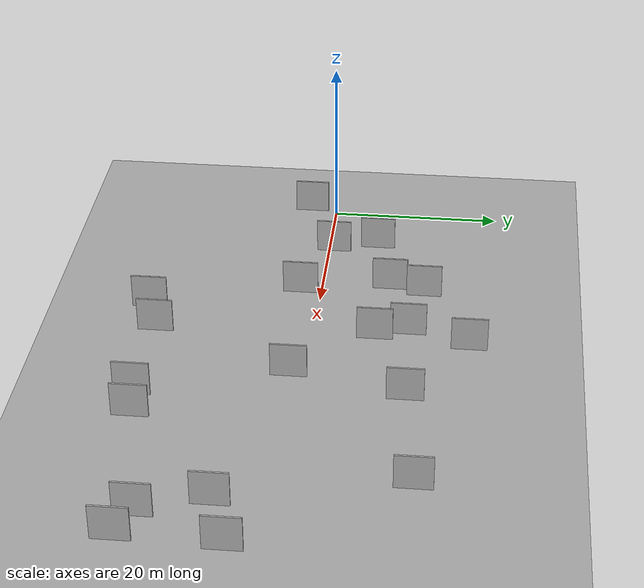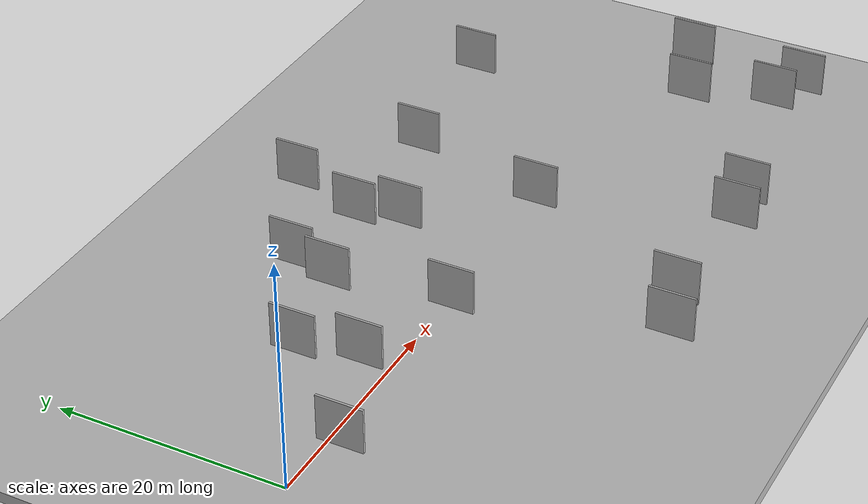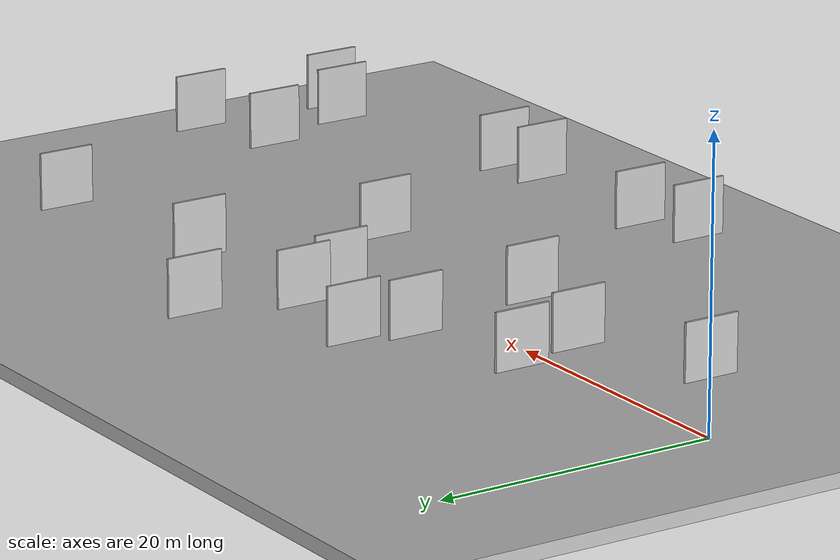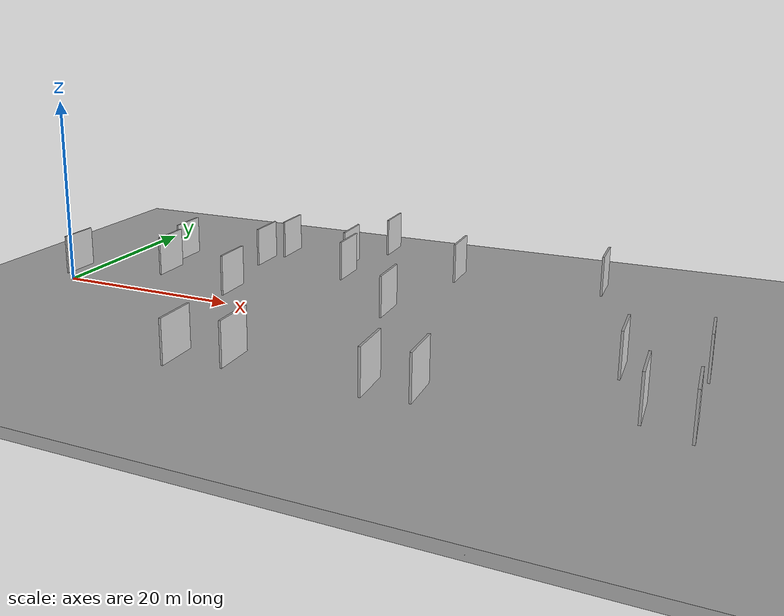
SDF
<?xml version="1.0" encoding="utf-8"?>

<sdf version="1.6">

   <world name="default">

      <gui fullscreen="0">

         <camera name="user_camera">

            <pose>-15 0 4.57585 0 0 0</pose>

            <view_controller>orbit</view_controller>

         </camera>

      </gui>

      <scene>

         <sky>

           <clouds>

             <speed>12</speed>

           </clouds>

         </sky>

         <ambient>0.4 0.4 0.4 1</ambient>

         <background>0.7 0.7 0.7 1</background>

         <shadows>1</shadows>

      </scene>

      <gravity>0 0 -9.8066</gravity>

      <magnetic_field>6e-06 2.3e-05 -4.2e-05</magnetic_field>

      <physics default="0" name="default_physics" type="ode">

         <ode>

            <solver>

               <type>quick</type>

               <iters>10</iters>

               <sor>1.0</sor>

               <use_dynamic_moi_rescaling>0</use_dynamic_moi_rescaling>

            </solver>

            <constraints>

               <cfm>0</cfm>

               <erp>0.2</erp>

               <contact_max_correcting_vel>100</contact_max_correcting_vel>

               <contact_surface_layer>0.001</contact_surface_layer>

            </constraints>

         </ode>

         <max_step_size>0.004</max_step_size>

         <real_time_factor>1</real_time_factor>

         <real_time_update_rate>250</real_time_update_rate>

      </physics>

      <light name="sun" type="directional">

         <cast_shadows>1</cast_shadows>

         <pose>0 0 10 0 0 0</pose>

         <diffuse>0.8 0.8 0.8 1</diffuse>

         <specular>0.2 0.2 0.2 1</specular>

         <attenuation>

            <range>1000</range>

            <constant>0.9</constant>

            <linear>0.01</linear>

            <quadratic>0.001</quadratic>

         </attenuation>

         <direction>-0.5 0.1 -0.9</direction>

      </light>

      <include>

         <name>ground_plane_1</name>

         <uri>model://HANNAS_ground_plane</uri>

         <pose>0 0 0  0 0 0</pose>

      </include>

      <include>

         <name>ground_plane_2</name>

         <uri>model://HANNAS_ground_plane</uri>

         <pose>100 0 0  0 0 0</pose>

      </include>

      <model name="HANNAS_wall_1">

         <static>1</static>

         <pose frame="">66.6942 -4.2332 2.5 0.000000 0.000000 1.570796</pose>

         <link name="link">

            <pose frame="">0 0 2.00 0 0 0</pose>

            <collision name="collision">

               <geometry>

                  <box>

                     <size>4.00 0.2 4.00</size>

                  </box>

               </geometry>

               <max_contacts>10</max_contacts>

               <surface>

                  <contact>

                     <ode/>

                  </contact>

                  <bounce/>

                  <friction>

                     <torsional>

                        <ode/>

                     </torsional>

                     <ode/>

                  </friction>

               </surface>

            </collision>

            <visual name="visual">

               <cast_shadows>0</cast_shadows>

               <geometry>

                  <box>

                     <size>4.00 0.2 4.00</size>

                  </box>

               </geometry>

               <material>

                  <script>

                     <uri>model://HANNAS_wall/materials/scripts</uri>

                     <uri>model://HANNAS_wall/materials/textures</uri>

                     <name>vrc/HANNAS_wall</name>

                  </script>

               </material>

            </visual>

            <self_collide>0</self_collide>

            <enable_wind>0</enable_wind>

            <kinematic>0</kinematic>

         </link>

      </model>

      <model name="HANNAS_wall_2">

         <static>1</static>

         <pose frame="">11.5456 6.1222 2.5 0.000000 0.000000 1.570796</pose>

         <link name="link">

            <pose frame="">0 0 2.00 0 0 0</pose>

            <collision name="collision">

               <geometry>

                  <box>

                     <size>4.00 0.2 4.00</size>

                  </box>

               </geometry>

               <max_contacts>10</max_contacts>

               <surface>

                  <contact>

                     <ode/>

                  </contact>

                  <bounce/>

                  <friction>

                     <torsional>

                        <ode/>

                     </torsional>

                     <ode/>

                  </friction>

               </surface>

            </collision>

            <visual name="visual">

               <cast_shadows>0</cast_shadows>

               <geometry>

                  <box>

                     <size>4.00 0.2 4.00</size>

                  </box>

               </geometry>

               <material>

                  <script>

                     <uri>model://HANNAS_wall/materials/scripts</uri>

                     <uri>model://HANNAS_wall/materials/textures</uri>

                     <name>vrc/HANNAS_wall</name>

                  </script>

               </material>

            </visual>

            <self_collide>0</self_collide>

            <enable_wind>0</enable_wind>

            <kinematic>0</kinematic>

         </link>

      </model>

      <model name="HANNAS_wall_3">

         <static>1</static>

         <pose frame="">62.7102 -13.5554 2.5 0.000000 0.000000 1.570796</pose>

         <link name="link">

            <pose frame="">0 0 2.00 0 0 0</pose>

            <collision name="collision">

               <geometry>

                  <box>

                     <size>4.00 0.2 4.00</size>

                  </box>

               </geometry>

               <max_contacts>10</max_contacts>

               <surface>

                  <contact>

                     <ode/>

                  </contact>

                  <bounce/>

                  <friction>

                     <torsional>

                        <ode/>

                     </torsional>

                     <ode/>

                  </friction>

               </surface>

            </collision>

            <visual name="visual">

               <cast_shadows>0</cast_shadows>

               <geometry>

                  <box>

                     <size>4.00 0.2 4.00</size>

                  </box>

               </geometry>

               <material>

                  <script>

                     <uri>model://HANNAS_wall/materials/scripts</uri>

                     <uri>model://HANNAS_wall/materials/textures</uri>

                     <name>vrc/HANNAS_wall</name>

                  </script>

               </material>

            </visual>

            <self_collide>0</self_collide>

            <enable_wind>0</enable_wind>

            <kinematic>0</kinematic>

         </link>

      </model>

      <model name="HANNAS_wall_4">

         <static>1</static>

         <pose frame="">38.6337 -1.4164 2.5 0.000000 0.000000 1.570796</pose>

         <link name="link">

            <pose frame="">0 0 2.00 0 0 0</pose>

            <collision name="collision">

               <geometry>

                  <box>

                     <size>4.00 0.2 4.00</size>

                  </box>

               </geometry>

               <max_contacts>10</max_contacts>

               <surface>

                  <contact>

                     <ode/>

                  </contact>

                  <bounce/>

                  <friction>

                     <torsional>

                        <ode/>

                     </torsional>

                     <ode/>

                  </friction>

               </surface>

            </collision>

            <visual name="visual">

               <cast_shadows>0</cast_shadows>

               <geometry>

                  <box>

                     <size>4.00 0.2 4.00</size>

                  </box>

               </geometry>

               <material>

                  <script>

                     <uri>model://HANNAS_wall/materials/scripts</uri>

                     <uri>model://HANNAS_wall/materials/textures</uri>

                     <name>vrc/HANNAS_wall</name>

                  </script>

               </material>

            </visual>

            <self_collide>0</self_collide>

            <enable_wind>0</enable_wind>

            <kinematic>0</kinematic>

         </link>

      </model>

      <model name="HANNAS_wall_5">

         <static>1</static>

         <pose frame="">21.5916 12.1789 2.5 0.000000 0.000000 1.570796</pose>

         <link name="link">

            <pose frame="">0 0 2.00 0 0 0</pose>

            <collision name="collision">

               <geometry>

                  <box>

                     <size>4.00 0.2 4.00</size>

                  </box>

               </geometry>

               <max_contacts>10</max_contacts>

               <surface>

                  <contact>

                     <ode/>

                  </contact>

                  <bounce/>

                  <friction>

                     <torsional>

                        <ode/>

                     </torsional>

                     <ode/>

                  </friction>

               </surface>

            </collision>

            <visual name="visual">

               <cast_shadows>0</cast_shadows>

               <geometry>

                  <box>

                     <size>4.00 0.2 4.00</size>

                  </box>

               </geometry>

               <material>

                  <script>

                     <uri>model://HANNAS_wall/materials/scripts</uri>

                     <uri>model://HANNAS_wall/materials/textures</uri>

                     <name>vrc/HANNAS_wall</name>

                  </script>

               </material>

            </visual>

            <self_collide>0</self_collide>

            <enable_wind>0</enable_wind>

            <kinematic>0</kinematic>

         </link>

      </model>

      <model name="HANNAS_wall_6">

         <static>1</static>

         <pose frame="">31.4083 -17.2123 2.5 0.000000 0.000000 1.570796</pose>

         <link name="link">

            <pose frame="">0 0 2.00 0 0 0</pose>

            <collision name="collision">

               <geometry>

                  <box>

                     <size>4.00 0.2 4.00</size>

                  </box>

               </geometry>

               <max_contacts>10</max_contacts>

               <surface>

                  <contact>

                     <ode/>

                  </contact>

                  <bounce/>

                  <friction>

                     <torsional>

                        <ode/>

                     </torsional>

                     <ode/>

                  </friction>

               </surface>

            </collision>

            <visual name="visual">

               <cast_shadows>0</cast_shadows>

               <geometry>

                  <box>

                     <size>4.00 0.2 4.00</size>

                  </box>

               </geometry>

               <material>

                  <script>

                     <uri>model://HANNAS_wall/materials/scripts</uri>

                     <uri>model://HANNAS_wall/materials/textures</uri>

                     <name>vrc/HANNAS_wall</name>

                  </script>

               </material>

            </visual>

            <self_collide>0</self_collide>

            <enable_wind>0</enable_wind>

            <kinematic>0</kinematic>

         </link>

      </model>

      <model name="HANNAS_wall_7">

         <static>1</static>

         <pose frame="">12.7582 0.9636 2.5 0.000000 0.000000 1.570796</pose>

         <link name="link">

            <pose frame="">0 0 2.00 0 0 0</pose>

            <collision name="collision">

               <geometry>

                  <box>

                     <size>4.00 0.2 4.00</size>

                  </box>

               </geometry>

               <max_contacts>10</max_contacts>

               <surface>

                  <contact>

                     <ode/>

                  </contact>

                  <bounce/>

                  <friction>

                     <torsional>

                        <ode/>

                     </torsional>

                     <ode/>

                  </friction>

               </surface>

            </collision>

            <visual name="visual">

               <cast_shadows>0</cast_shadows>

               <geometry>

                  <box>

                     <size>4.00 0.2 4.00</size>

                  </box>

               </geometry>

               <material>

                  <script>

                     <uri>model://HANNAS_wall/materials/scripts</uri>

                     <uri>model://HANNAS_wall/materials/textures</uri>

                     <name>vrc/HANNAS_wall</name>

                  </script>

               </material>

            </visual>

            <self_collide>0</self_collide>

            <enable_wind>0</enable_wind>

            <kinematic>0</kinematic>

         </link>

      </model>

      <model name="HANNAS_wall_8">

         <static>1</static>

         <pose frame="">22.1565 -1.9897 2.5 0.000000 0.000000 1.570796</pose>

         <link name="link">

            <pose frame="">0 0 2.00 0 0 0</pose>

            <collision name="collision">

               <geometry>

                  <box>

                     <size>4.00 0.2 4.00</size>

                  </box>

               </geometry>

               <max_contacts>10</max_contacts>

               <surface>

                  <contact>

                     <ode/>

                  </contact>

                  <bounce/>

                  <friction>

                     <torsional>

                        <ode/>

                     </torsional>

                     <ode/>

                  </friction>

               </surface>

            </collision>

            <visual name="visual">

               <cast_shadows>0</cast_shadows>

               <geometry>

                  <box>

                     <size>4.00 0.2 4.00</size>

                  </box>

               </geometry>

               <material>

                  <script>

                     <uri>model://HANNAS_wall/materials/scripts</uri>

                     <uri>model://HANNAS_wall/materials/textures</uri>

                     <name>vrc/HANNAS_wall</name>

                  </script>

               </material>

            </visual>

            <self_collide>0</self_collide>

            <enable_wind>0</enable_wind>

            <kinematic>0</kinematic>

         </link>

      </model>

      <model name="HANNAS_wall_9">

         <static>1</static>

         <pose frame="">56.1053 13.0224 2.5 0.000000 0.000000 1.570796</pose>

         <link name="link">

            <pose frame="">0 0 2.00 0 0 0</pose>

            <collision name="collision">

               <geometry>

                  <box>

                     <size>4.00 0.2 4.00</size>

                  </box>

               </geometry>

               <max_contacts>10</max_contacts>

               <surface>

                  <contact>

                     <ode/>

                  </contact>

                  <bounce/>

                  <friction>

                     <torsional>

                        <ode/>

                     </torsional>

                     <ode/>

                  </friction>

               </surface>

            </collision>

            <visual name="visual">

               <cast_shadows>0</cast_shadows>

               <geometry>

                  <box>

                     <size>4.00 0.2 4.00</size>

                  </box>

               </geometry>

               <material>

                  <script>

                     <uri>model://HANNAS_wall/materials/scripts</uri>

                     <uri>model://HANNAS_wall/materials/textures</uri>

                     <name>vrc/HANNAS_wall</name>

                  </script>

               </material>

            </visual>

            <self_collide>0</self_collide>

            <enable_wind>0</enable_wind>

            <kinematic>0</kinematic>

         </link>

      </model>

      <model name="HANNAS_wall_10">

         <static>1</static>

         <pose frame="">41.6789 11.2818 2.5 0.000000 0.000000 1.570796</pose>

         <link name="link">

            <pose frame="">0 0 2.00 0 0 0</pose>

            <collision name="collision">

               <geometry>

                  <box>

                     <size>4.00 0.2 4.00</size>

                  </box>

               </geometry>

               <max_contacts>10</max_contacts>

               <surface>

                  <contact>

                     <ode/>

                  </contact>

                  <bounce/>

                  <friction>

                     <torsional>

                        <ode/>

                     </torsional>

                     <ode/>

                  </friction>

               </surface>

            </collision>

            <visual name="visual">

               <cast_shadows>0</cast_shadows>

               <geometry>

                  <box>

                     <size>4.00 0.2 4.00</size>

                  </box>

               </geometry>

               <material>

                  <script>

                     <uri>model://HANNAS_wall/materials/scripts</uri>

                     <uri>model://HANNAS_wall/materials/textures</uri>

                     <name>vrc/HANNAS_wall</name>

                  </script>

               </material>

            </visual>

            <self_collide>0</self_collide>

            <enable_wind>0</enable_wind>

            <kinematic>0</kinematic>

         </link>

      </model>

      <model name="HANNAS_wall_11">

         <static>1</static>

         <pose frame="">26.8254 -18.6904 2.5 0.000000 0.000000 1.570796</pose>

         <link name="link">

            <pose frame="">0 0 2.00 0 0 0</pose>

            <collision name="collision">

               <geometry>

                  <box>

                     <size>4.00 0.2 4.00</size>

                  </box>

               </geometry>

               <max_contacts>10</max_contacts>

               <surface>

                  <contact>

                     <ode/>

                  </contact>

                  <bounce/>

                  <friction>

                     <torsional>

                        <ode/>

                     </torsional>

                     <ode/>

                  </friction>

               </surface>

            </collision>

            <visual name="visual">

               <cast_shadows>0</cast_shadows>

               <geometry>

                  <box>

                     <size>4.00 0.2 4.00</size>

                  </box>

               </geometry>

               <material>

                  <script>

                     <uri>model://HANNAS_wall/materials/scripts</uri>

                     <uri>model://HANNAS_wall/materials/textures</uri>

                     <name>vrc/HANNAS_wall</name>

                  </script>

               </material>

            </visual>

            <self_collide>0</self_collide>

            <enable_wind>0</enable_wind>

            <kinematic>0</kinematic>

         </link>

      </model>

      <model name="HANNAS_wall_12">

         <static>1</static>

         <pose frame="">60.4012 -6.4137 2.5 0.000000 0.000000 1.570796</pose>

         <link name="link">

            <pose frame="">0 0 2.00 0 0 0</pose>

            <collision name="collision">

               <geometry>

                  <box>

                     <size>4.00 0.2 4.00</size>

                  </box>

               </geometry>

               <max_contacts>10</max_contacts>

               <surface>

                  <contact>

                     <ode/>

                  </contact>

                  <bounce/>

                  <friction>

                     <torsional>

                        <ode/>

                     </torsional>

                     <ode/>

                  </friction>

               </surface>

            </collision>

            <visual name="visual">

               <cast_shadows>0</cast_shadows>

               <geometry>

                  <box>

                     <size>4.00 0.2 4.00</size>

                  </box>

               </geometry>

               <material>

                  <script>

                     <uri>model://HANNAS_wall/materials/scripts</uri>

                     <uri>model://HANNAS_wall/materials/textures</uri>

                     <name>vrc/HANNAS_wall</name>

                  </script>

               </material>

            </visual>

            <self_collide>0</self_collide>

            <enable_wind>0</enable_wind>

            <kinematic>0</kinematic>

         </link>

      </model>

      <model name="HANNAS_wall_13">

         <static>1</static>

         <pose frame="">29.5155 10.8695 2.5 0.000000 0.000000 1.570796</pose>

         <link name="link">

            <pose frame="">0 0 2.00 0 0 0</pose>

            <collision name="collision">

               <geometry>

                  <box>

                     <size>4.00 0.2 4.00</size>

                  </box>

               </geometry>

               <max_contacts>10</max_contacts>

               <surface>

                  <contact>

                     <ode/>

                  </contact>

                  <bounce/>

                  <friction>

                     <torsional>

                        <ode/>

                     </torsional>

                     <ode/>

                  </friction>

               </surface>

            </collision>

            <visual name="visual">

               <cast_shadows>0</cast_shadows>

               <geometry>

                  <box>

                     <size>4.00 0.2 4.00</size>

                  </box>

               </geometry>

               <material>

                  <script>

                     <uri>model://HANNAS_wall/materials/scripts</uri>

                     <uri>model://HANNAS_wall/materials/textures</uri>

                     <name>vrc/HANNAS_wall</name>

                  </script>

               </material>

            </visual>

            <self_collide>0</self_collide>

            <enable_wind>0</enable_wind>

            <kinematic>0</kinematic>

         </link>

      </model>

      <model name="HANNAS_wall_14">

         <static>1</static>

         <pose frame="">66.3013 -14.9693 2.5 0.000000 0.000000 1.570796</pose>

         <link name="link">

            <pose frame="">0 0 2.00 0 0 0</pose>

            <collision name="collision">

               <geometry>

                  <box>

                     <size>4.00 0.2 4.00</size>

                  </box>

               </geometry>

               <max_contacts>10</max_contacts>

               <surface>

                  <contact>

                     <ode/>

                  </contact>

                  <bounce/>

                  <friction>

                     <torsional>

                        <ode/>

                     </torsional>

                     <ode/>

                  </friction>

               </surface>

            </collision>

            <visual name="visual">

               <cast_shadows>0</cast_shadows>

               <geometry>

                  <box>

                     <size>4.00 0.2 4.00</size>

                  </box>

               </geometry>

               <material>

                  <script>

                     <uri>model://HANNAS_wall/materials/scripts</uri>

                     <uri>model://HANNAS_wall/materials/textures</uri>

                     <name>vrc/HANNAS_wall</name>

                  </script>

               </material>

            </visual>

            <self_collide>0</self_collide>

            <enable_wind>0</enable_wind>

            <kinematic>0</kinematic>

         </link>

      </model>

      <model name="HANNAS_wall_15">

         <static>1</static>

         <pose frame="">47.2140 -16.9472 2.5 0.000000 0.000000 1.570796</pose>

         <link name="link">

            <pose frame="">0 0 2.00 0 0 0</pose>

            <collision name="collision">

               <geometry>

                  <box>

                     <size>4.00 0.2 4.00</size>

                  </box>

               </geometry>

               <max_contacts>10</max_contacts>

               <surface>

                  <contact>

                     <ode/>

                  </contact>

                  <bounce/>

                  <friction>

                     <torsional>

                        <ode/>

                     </torsional>

                     <ode/>

                  </friction>

               </surface>

            </collision>

            <visual name="visual">

               <cast_shadows>0</cast_shadows>

               <geometry>

                  <box>

                     <size>4.00 0.2 4.00</size>

                  </box>

               </geometry>

               <material>

                  <script>

                     <uri>model://HANNAS_wall/materials/scripts</uri>

                     <uri>model://HANNAS_wall/materials/textures</uri>

                     <name>vrc/HANNAS_wall</name>

                  </script>

               </material>

            </visual>

            <self_collide>0</self_collide>

            <enable_wind>0</enable_wind>

            <kinematic>0</kinematic>

         </link>

      </model>

      <model name="HANNAS_wall_16">

         <static>1</static>

         <pose frame="">31.8694 17.6939 2.5 0.000000 0.000000 1.570796</pose>

         <link name="link">

            <pose frame="">0 0 2.00 0 0 0</pose>

            <collision name="collision">

               <geometry>

                  <box>

                     <size>4.00 0.2 4.00</size>

                  </box>

               </geometry>

               <max_contacts>10</max_contacts>

               <surface>

                  <contact>

                     <ode/>

                  </contact>

                  <bounce/>

                  <friction>

                     <torsional>

                        <ode/>

                     </torsional>

                     <ode/>

                  </friction>

               </surface>

            </collision>

            <visual name="visual">

               <cast_shadows>0</cast_shadows>

               <geometry>

                  <box>

                     <size>4.00 0.2 4.00</size>

                  </box>

               </geometry>

               <material>

                  <script>

                     <uri>model://HANNAS_wall/materials/scripts</uri>

                     <uri>model://HANNAS_wall/materials/textures</uri>

                     <name>vrc/HANNAS_wall</name>

                  </script>

               </material>

            </visual>

            <self_collide>0</self_collide>

            <enable_wind>0</enable_wind>

            <kinematic>0</kinematic>

         </link>

      </model>

      <model name="HANNAS_wall_17">

         <static>1</static>

         <pose frame="">43.4391 -17.5065 2.5 0.000000 0.000000 1.570796</pose>

         <link name="link">

            <pose frame="">0 0 2.00 0 0 0</pose>

            <collision name="collision">

               <geometry>

                  <box>

                     <size>4.00 0.2 4.00</size>

                  </box>

               </geometry>

               <max_contacts>10</max_contacts>

               <surface>

                  <contact>

                     <ode/>

                  </contact>

                  <bounce/>

                  <friction>

                     <torsional>

                        <ode/>

                     </torsional>

                     <ode/>

                  </friction>

               </surface>

            </collision>

            <visual name="visual">

               <cast_shadows>0</cast_shadows>

               <geometry>

                  <box>

                     <size>4.00 0.2 4.00</size>

                  </box>

               </geometry>

               <material>

                  <script>

                     <uri>model://HANNAS_wall/materials/scripts</uri>

                     <uri>model://HANNAS_wall/materials/textures</uri>

                     <name>vrc/HANNAS_wall</name>

                  </script>

               </material>

            </visual>

            <self_collide>0</self_collide>

            <enable_wind>0</enable_wind>

            <kinematic>0</kinematic>

         </link>

      </model>

      <model name="HANNAS_wall_18">

         <static>1</static>

         <pose frame="">20.4695 8.1968 2.5 0.000000 0.000000 1.570796</pose>

         <link name="link">

            <pose frame="">0 0 2.00 0 0 0</pose>

            <collision name="collision">

               <geometry>

                  <box>

                     <size>4.00 0.2 4.00</size>

                  </box>

               </geometry>

               <max_contacts>10</max_contacts>

               <surface>

                  <contact>

                     <ode/>

                  </contact>

                  <bounce/>

                  <friction>

                     <torsional>

                        <ode/>

                     </torsional>

                     <ode/>

                  </friction>

               </surface>

            </collision>

            <visual name="visual">

               <cast_shadows>0</cast_shadows>

               <geometry>

                  <box>

                     <size>4.00 0.2 4.00</size>

                  </box>

               </geometry>

               <material>

                  <script>

                     <uri>model://HANNAS_wall/materials/scripts</uri>

                     <uri>model://HANNAS_wall/materials/textures</uri>

                     <name>vrc/HANNAS_wall</name>

                  </script>

               </material>

            </visual>

            <self_collide>0</self_collide>

            <enable_wind>0</enable_wind>

            <kinematic>0</kinematic>

         </link>

      </model>

      <model name="HANNAS_wall_19">

         <static>1</static>

         <pose frame="">30.7529 7.2135 2.5 0.000000 0.000000 1.570796</pose>

         <link name="link">

            <pose frame="">0 0 2.00 0 0 0</pose>

            <collision name="collision">

               <geometry>

                  <box>

                     <size>4.00 0.2 4.00</size>

                  </box>

               </geometry>

               <max_contacts>10</max_contacts>

               <surface>

                  <contact>

                     <ode/>

                  </contact>

                  <bounce/>

                  <friction>

                     <torsional>

                        <ode/>

                     </torsional>

                     <ode/>

                  </friction>

               </surface>

            </collision>

            <visual name="visual">

               <cast_shadows>0</cast_shadows>

               <geometry>

                  <box>

                     <size>4.00 0.2 4.00</size>

                  </box>

               </geometry>

               <material>

                  <script>

                     <uri>model://HANNAS_wall/materials/scripts</uri>

                     <uri>model://HANNAS_wall/materials/textures</uri>

                     <name>vrc/HANNAS_wall</name>

                  </script>

               </material>

            </visual>

            <self_collide>0</self_collide>

            <enable_wind>0</enable_wind>

            <kinematic>0</kinematic>

         </link>

      </model>

      <model name="HANNAS_wall_20">

         <static>1</static>

         <pose frame="">3.4874 -2.6246 2.5 0.000000 0.000000 1.570796</pose>

         <link name="link">

            <pose frame="">0 0 2.00 0 0 0</pose>

            <collision name="collision">

               <geometry>

                  <box>

                     <size>4.00 0.2 4.00</size>

                  </box>

               </geometry>

               <max_contacts>10</max_contacts>

               <surface>

                  <contact>

                     <ode/>

                  </contact>

                  <bounce/>

                  <friction>

                     <torsional>

                        <ode/>

                     </torsional>

                     <ode/>

                  </friction>

               </surface>

            </collision>

            <visual name="visual">

               <cast_shadows>0</cast_shadows>

               <geometry>

                  <box>

                     <size>4.00 0.2 4.00</size>

                  </box>

               </geometry>

               <material>

                  <script>

                     <uri>model://HANNAS_wall/materials/scripts</uri>

                     <uri>model://HANNAS_wall/materials/textures</uri>

                     <name>vrc/HANNAS_wall</name>

                  </script>

               </material>

            </visual>

            <self_collide>0</self_collide>

            <enable_wind>0</enable_wind>

            <kinematic>0</kinematic>

         </link>

      </model>

   </world>

</sdf>

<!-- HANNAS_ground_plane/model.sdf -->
<sdf version="1.4">
<model name="HANNAS_ground_plane">
  <static>true</static>
    <link name="link">
      <collision name="collision">
        <geometry>
          <plane>
            <normal>0 0 1</normal>
            <size>1000 1000</size>
          </plane>
        </geometry>
        <surface>
          <friction>
            <ode>
              <mu>100</mu>
              <mu2>50</mu2>
            </ode>
          </friction>
        </surface>
      </collision>
      <visual name="visual">
        <cast_shadows>false</cast_shadows>
        <geometry>
          <plane>
            <normal>0 0 1</normal>
            <size>1000 1000</size>
          </plane>
        </geometry>
        <material>
          <script>
            <uri>model://HANNAS_ground_plane/materials/scripts/HANNAS_ground_plane.material</uri>
	    <uri>model://HANNAS_ground_plane/materials/textures</uri>
            <name>HANNASGroundPlane/Image</name>
          </script>
        </material>
      </visual>
    </link>
  </model>
</sdf>
